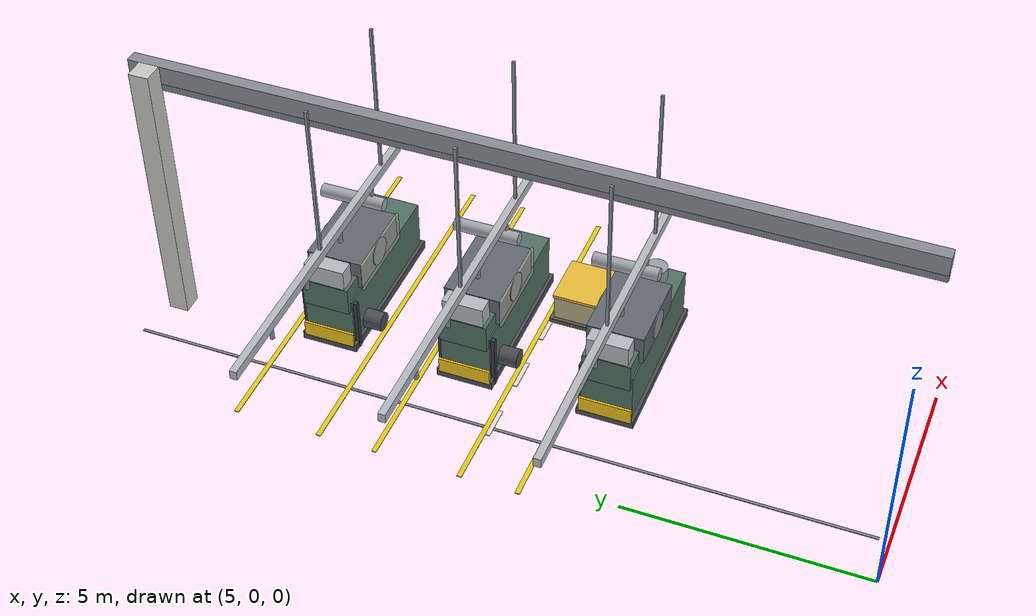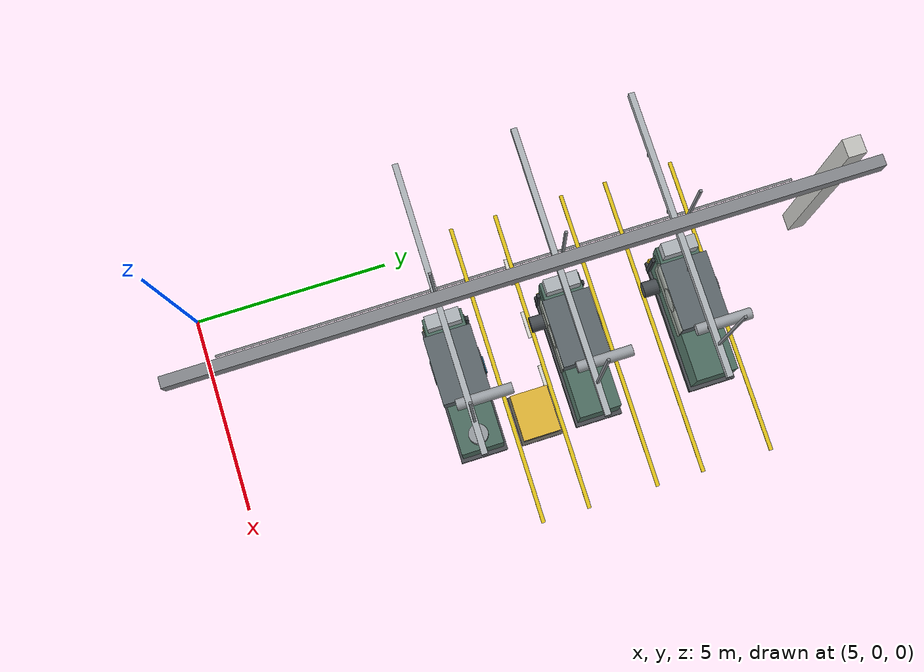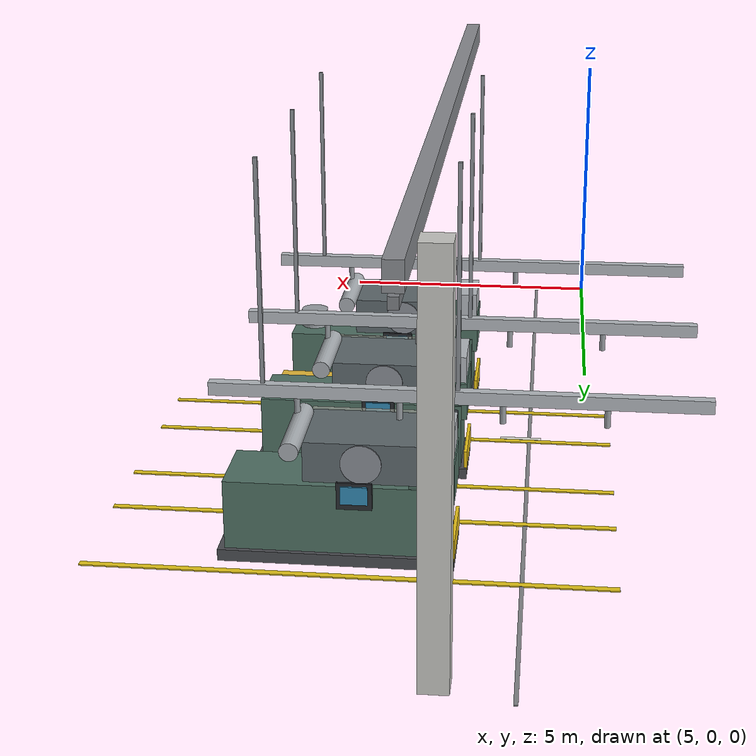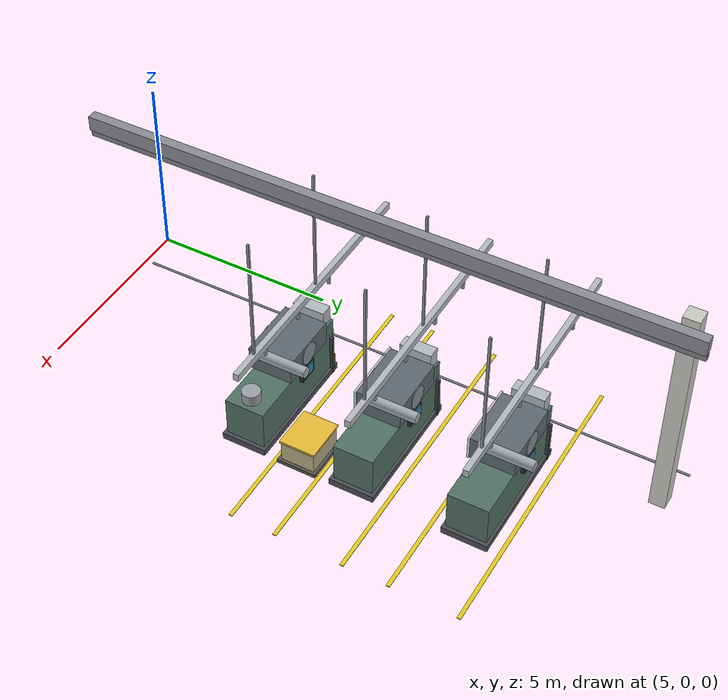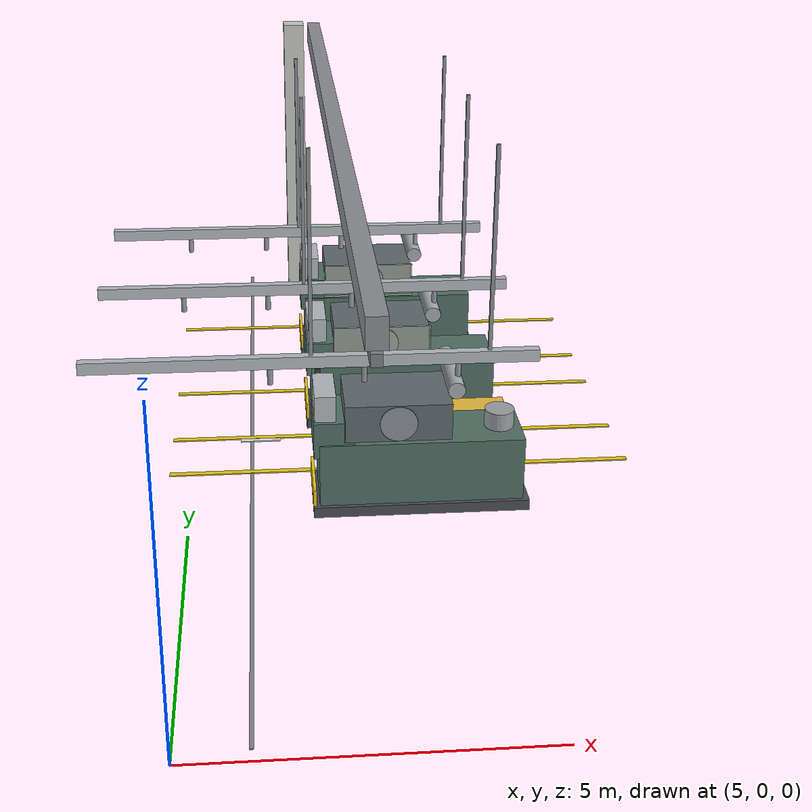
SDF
<sdf version="1.10">
 <world name="textile_mill">
  <model name="col_3">
   <static>true</static>
   <pose>7.050 15.450 3.000 0 0 0</pose>
   <link name="l">
    <collision name="c"><geometry><box><size>0.420 0.420 6.000</size></box></geometry></collision>
    <visual name="v">
     <geometry><box><size>0.420 0.420 6.000</size></box></geometry>
     <material>
      <ambient>0.800 0.800 0.780 1.0</ambient>
      <diffuse>0.800 0.800 0.780 1.0</diffuse>
      <specular>0.18 0.18 0.18 1</specular>
      <pbr><metal><roughness>0.85</roughness><metalness>0.0</metalness></metal></pbr>
     </material>
    </visual>
   </link>
  </model>
  <model name="truss_1">
   <static>true</static>
   <pose>7.500 8.000 5.700 0 0 0</pose>
   <link name="l">
    <collision name="c"><geometry><box><size>0.260 16.000 0.400</size></box></geometry></collision>
    <visual name="v">
     <geometry><box><size>0.260 16.000 0.400</size></box></geometry>
     <material>
      <ambient>0.550 0.560 0.580 1.0</ambient>
      <diffuse>0.550 0.560 0.580 1.0</diffuse>
      <specular>0.18 0.18 0.18 1</specular>
      <pbr><metal><roughness>0.4</roughness><metalness>0.6</metalness></metal></pbr>
     </material>
    </visual>
   </link>
  </model>
  <model name="truss_lo_1">
   <static>true</static>
   <pose>7.500 8.000 5.380 0 0 0</pose>
   <link name="l">
    <collision name="c"><geometry><box><size>0.140 16.000 0.160</size></box></geometry></collision>
    <visual name="v">
     <geometry><box><size>0.140 16.000 0.160</size></box></geometry>
     <material>
      <ambient>0.500 0.510 0.530 1.0</ambient>
      <diffuse>0.500 0.510 0.530 1.0</diffuse>
      <specular>0.18 0.18 0.18 1</specular>
      <pbr><metal><roughness>0.65</roughness><metalness>0.6</metalness></metal></pbr>
     </material>
    </visual>
   </link>
  </model>
  <model name="obs_pallet_a">
   <static>true</static>
   <pose>9.900 7.500 0.340 0 0 0</pose>
   <link name="l">
    <collision name="c"><geometry><box><size>1.100 0.900 0.680</size></box></geometry></collision>
    <visual name="v">
     <geometry><box><size>1.100 0.900 0.680</size></box></geometry>
     <material>
      <ambient>0.720 0.680 0.520 1.0</ambient>
      <diffuse>0.720 0.680 0.520 1.0</diffuse>
      <specular>0.18 0.18 0.18 1</specular>
      <pbr><metal><roughness>0.85</roughness><metalness>0.0</metalness></metal></pbr>
     </material>
    </visual>
   </link>
  </model>
  <model name="obsband_pallet_a">
   <static>true</static>
   <pose>9.900 7.500 0.700 0 0 0</pose>
   <link name="l">
    <collision name="c"><geometry><box><size>1.160 0.960 0.060</size></box></geometry></collision>
    <visual name="v">
     <geometry><box><size>1.160 0.960 0.060</size></box></geometry>
     <material>
      <ambient>0.920 0.740 0.220 1.0</ambient>
      <diffuse>0.920 0.740 0.220 1.0</diffuse>
      <specular>0.18 0.18 0.18 1</specular>
      <pbr><metal><roughness>0.65</roughness><metalness>0.0</metalness></metal></pbr>
     </material>
    </visual>
   </link>
  </model>
  <model name="obsfoot_pallet_a">
   <static>true</static>
   <pose>9.900 7.500 0.060 0 0 0</pose>
   <link name="l">
    <collision name="c"><geometry><box><size>1.260 1.060 0.100</size></box></geometry></collision>
    <visual name="v">
     <geometry><box><size>1.260 1.060 0.100</size></box></geometry>
     <material>
      <ambient>0.340 0.330 0.300 1.0</ambient>
      <diffuse>0.340 0.330 0.300 1.0</diffuse>
      <specular>0.18 0.18 0.18 1</specular>
      <pbr><metal><roughness>0.65</roughness><metalness>0.0</metalness></metal></pbr>
     </material>
    </visual>
   </link>
  </model>
  <model name="cln_carding_1">
   <static>true</static>
   <pose>7.000 6.000 2.520 0 0 0</pose>
   <link name="l">
    <collision name="c"><geometry><box><size>7.300 0.150 0.200</size></box></geometry></collision>
    <visual name="v">
     <geometry><box><size>7.300 0.150 0.200</size></box></geometry>
     <material>
      <ambient>0.720 0.740 0.760 1.0</ambient>
      <diffuse>0.720 0.740 0.760 1.0</diffuse>
      <specular>0.18 0.18 0.18 1</specular>
      <pbr><metal><roughness>0.35</roughness><metalness>0.5</metalness></metal></pbr>
     </material>
    </visual>
   </link>
  </model>
  <model name="clnz_carding_1_2">
   <static>true</static>
   <pose>6.350 6.000 2.280 0.0000 0.0000 0.0000</pose>
   <link name="l">
    <collision name="c">
     <geometry><cylinder><radius>0.045</radius><length>0.300</length></cylinder></geometry>
    </collision>
    <visual name="v">
     <geometry><cylinder><radius>0.045</radius><length>0.300</length></cylinder></geometry>
     <material>
      <ambient>0.580 0.600 0.620 1.0</ambient>
      <diffuse>0.580 0.600 0.620 1.0</diffuse>
      <specular>0.18 0.18 0.18 1</specular>
      <pbr><metal><roughness>0.35</roughness><metalness>0.5</metalness></metal></pbr>
     </material>
    </visual>
   </link>
  </model>
  <model name="clnz_carding_1_3">
   <static>true</static>
   <pose>7.850 6.000 2.280 0.0000 0.0000 0.0000</pose>
   <link name="l">
    <collision name="c">
     <geometry><cylinder><radius>0.045</radius><length>0.300</length></cylinder></geometry>
    </collision>
    <visual name="v">
     <geometry><cylinder><radius>0.045</radius><length>0.300</length></cylinder></geometry>
     <material>
      <ambient>0.580 0.600 0.620 1.0</ambient>
      <diffuse>0.580 0.600 0.620 1.0</diffuse>
      <specular>0.18 0.18 0.18 1</specular>
      <pbr><metal><roughness>0.35</roughness><metalness>0.5</metalness></metal></pbr>
     </material>
    </visual>
   </link>
  </model>
  <model name="clnz_carding_1_4">
   <static>true</static>
   <pose>9.350 6.000 2.280 0.0000 0.0000 0.0000</pose>
   <link name="l">
    <collision name="c">
     <geometry><cylinder><radius>0.045</radius><length>0.300</length></cylinder></geometry>
    </collision>
    <visual name="v">
     <geometry><cylinder><radius>0.045</radius><length>0.300</length></cylinder></geometry>
     <material>
      <ambient>0.580 0.600 0.620 1.0</ambient>
      <diffuse>0.580 0.600 0.620 1.0</diffuse>
      <specular>0.18 0.18 0.18 1</specular>
      <pbr><metal><roughness>0.35</roughness><metalness>0.5</metalness></metal></pbr>
     </material>
    </visual>
   </link>
  </model>
  <model name="clnh_carding_1_1">
   <static>true</static>
   <pose>7.000 6.000 4.260 0 0 0</pose>
   <link name="l">
    <collision name="c"><geometry><box><size>0.060 0.060 3.480</size></box></geometry></collision>
    <visual name="v">
     <geometry><box><size>0.060 0.060 3.480</size></box></geometry>
     <material>
      <ambient>0.550 0.570 0.590 1.0</ambient>
      <diffuse>0.550 0.570 0.590 1.0</diffuse>
      <specular>0.18 0.18 0.18 1</specular>
      <pbr><metal><roughness>0.65</roughness><metalness>0.6</metalness></metal></pbr>
     </material>
    </visual>
   </link>
  </model>
  <model name="clnh_carding_1_2">
   <static>true</static>
   <pose>9.850 6.000 4.260 0 0 0</pose>
   <link name="l">
    <collision name="c"><geometry><box><size>0.060 0.060 3.480</size></box></geometry></collision>
    <visual name="v">
     <geometry><box><size>0.060 0.060 3.480</size></box></geometry>
     <material>
      <ambient>0.550 0.570 0.590 1.0</ambient>
      <diffuse>0.550 0.570 0.590 1.0</diffuse>
      <specular>0.18 0.18 0.18 1</specular>
      <pbr><metal><roughness>0.65</roughness><metalness>0.6</metalness></metal></pbr>
     </material>
    </visual>
   </link>
  </model>
  <model name="cln_carding_2">
   <static>true</static>
   <pose>7.000 9.000 2.520 0 0 0</pose>
   <link name="l">
    <collision name="c"><geometry><box><size>7.300 0.150 0.200</size></box></geometry></collision>
    <visual name="v">
     <geometry><box><size>7.300 0.150 0.200</size></box></geometry>
     <material>
      <ambient>0.720 0.740 0.760 1.0</ambient>
      <diffuse>0.720 0.740 0.760 1.0</diffuse>
      <specular>0.18 0.18 0.18 1</specular>
      <pbr><metal><roughness>0.35</roughness><metalness>0.5</metalness></metal></pbr>
     </material>
    </visual>
   </link>
  </model>
  <model name="clnz_carding_2_1">
   <static>true</static>
   <pose>4.850 9.000 2.280 0.0000 0.0000 0.0000</pose>
   <link name="l">
    <collision name="c">
     <geometry><cylinder><radius>0.045</radius><length>0.300</length></cylinder></geometry>
    </collision>
    <visual name="v">
     <geometry><cylinder><radius>0.045</radius><length>0.300</length></cylinder></geometry>
     <material>
      <ambient>0.580 0.600 0.620 1.0</ambient>
      <diffuse>0.580 0.600 0.620 1.0</diffuse>
      <specular>0.18 0.18 0.18 1</specular>
      <pbr><metal><roughness>0.35</roughness><metalness>0.5</metalness></metal></pbr>
     </material>
    </visual>
   </link>
  </model>
  <model name="clnz_carding_2_2">
   <static>true</static>
   <pose>6.350 9.000 2.280 0.0000 0.0000 0.0000</pose>
   <link name="l">
    <collision name="c">
     <geometry><cylinder><radius>0.045</radius><length>0.300</length></cylinder></geometry>
    </collision>
    <visual name="v">
     <geometry><cylinder><radius>0.045</radius><length>0.300</length></cylinder></geometry>
     <material>
      <ambient>0.580 0.600 0.620 1.0</ambient>
      <diffuse>0.580 0.600 0.620 1.0</diffuse>
      <specular>0.18 0.18 0.18 1</specular>
      <pbr><metal><roughness>0.35</roughness><metalness>0.5</metalness></metal></pbr>
     </material>
    </visual>
   </link>
  </model>
  <model name="clnz_carding_2_3">
   <static>true</static>
   <pose>7.850 9.000 2.280 0.0000 0.0000 0.0000</pose>
   <link name="l">
    <collision name="c">
     <geometry><cylinder><radius>0.045</radius><length>0.300</length></cylinder></geometry>
    </collision>
    <visual name="v">
     <geometry><cylinder><radius>0.045</radius><length>0.300</length></cylinder></geometry>
     <material>
      <ambient>0.580 0.600 0.620 1.0</ambient>
      <diffuse>0.580 0.600 0.620 1.0</diffuse>
      <specular>0.18 0.18 0.18 1</specular>
      <pbr><metal><roughness>0.35</roughness><metalness>0.5</metalness></metal></pbr>
     </material>
    </visual>
   </link>
  </model>
  <model name="clnz_carding_2_4">
   <static>true</static>
   <pose>9.350 9.000 2.280 0.0000 0.0000 0.0000</pose>
   <link name="l">
    <collision name="c">
     <geometry><cylinder><radius>0.045</radius><length>0.300</length></cylinder></geometry>
    </collision>
    <visual name="v">
     <geometry><cylinder><radius>0.045</radius><length>0.300</length></cylinder></geometry>
     <material>
      <ambient>0.580 0.600 0.620 1.0</ambient>
      <diffuse>0.580 0.600 0.620 1.0</diffuse>
      <specular>0.18 0.18 0.18 1</specular>
      <pbr><metal><roughness>0.35</roughness><metalness>0.5</metalness></metal></pbr>
     </material>
    </visual>
   </link>
  </model>
  <model name="clnh_carding_2_1">
   <static>true</static>
   <pose>7.000 9.000 4.260 0 0 0</pose>
   <link name="l">
    <collision name="c"><geometry><box><size>0.060 0.060 3.480</size></box></geometry></collision>
    <visual name="v">
     <geometry><box><size>0.060 0.060 3.480</size></box></geometry>
     <material>
      <ambient>0.550 0.570 0.590 1.0</ambient>
      <diffuse>0.550 0.570 0.590 1.0</diffuse>
      <specular>0.18 0.18 0.18 1</specular>
      <pbr><metal><roughness>0.65</roughness><metalness>0.6</metalness></metal></pbr>
     </material>
    </visual>
   </link>
  </model>
  <model name="clnh_carding_2_2">
   <static>true</static>
   <pose>9.850 9.000 4.260 0 0 0</pose>
   <link name="l">
    <collision name="c"><geometry><box><size>0.060 0.060 3.480</size></box></geometry></collision>
    <visual name="v">
     <geometry><box><size>0.060 0.060 3.480</size></box></geometry>
     <material>
      <ambient>0.550 0.570 0.590 1.0</ambient>
      <diffuse>0.550 0.570 0.590 1.0</diffuse>
      <specular>0.18 0.18 0.18 1</specular>
      <pbr><metal><roughness>0.65</roughness><metalness>0.6</metalness></metal></pbr>
     </material>
    </visual>
   </link>
  </model>
  <model name="cln_carding_3">
   <static>true</static>
   <pose>7.000 12.000 2.520 0 0 0</pose>
   <link name="l">
    <collision name="c"><geometry><box><size>7.300 0.150 0.200</size></box></geometry></collision>
    <visual name="v">
     <geometry><box><size>7.300 0.150 0.200</size></box></geometry>
     <material>
      <ambient>0.720 0.740 0.760 1.0</ambient>
      <diffuse>0.720 0.740 0.760 1.0</diffuse>
      <specular>0.18 0.18 0.18 1</specular>
      <pbr><metal><roughness>0.35</roughness><metalness>0.5</metalness></metal></pbr>
     </material>
    </visual>
   </link>
  </model>
  <model name="clnz_carding_3_1">
   <static>true</static>
   <pose>4.850 12.000 2.280 0.0000 0.0000 0.0000</pose>
   <link name="l">
    <collision name="c">
     <geometry><cylinder><radius>0.045</radius><length>0.300</length></cylinder></geometry>
    </collision>
    <visual name="v">
     <geometry><cylinder><radius>0.045</radius><length>0.300</length></cylinder></geometry>
     <material>
      <ambient>0.580 0.600 0.620 1.0</ambient>
      <diffuse>0.580 0.600 0.620 1.0</diffuse>
      <specular>0.18 0.18 0.18 1</specular>
      <pbr><metal><roughness>0.35</roughness><metalness>0.5</metalness></metal></pbr>
     </material>
    </visual>
   </link>
  </model>
  <model name="clnz_carding_3_2">
   <static>true</static>
   <pose>6.350 12.000 2.280 0.0000 0.0000 0.0000</pose>
   <link name="l">
    <collision name="c">
     <geometry><cylinder><radius>0.045</radius><length>0.300</length></cylinder></geometry>
    </collision>
    <visual name="v">
     <geometry><cylinder><radius>0.045</radius><length>0.300</length></cylinder></geometry>
     <material>
      <ambient>0.580 0.600 0.620 1.0</ambient>
      <diffuse>0.580 0.600 0.620 1.0</diffuse>
      <specular>0.18 0.18 0.18 1</specular>
      <pbr><metal><roughness>0.35</roughness><metalness>0.5</metalness></metal></pbr>
     </material>
    </visual>
   </link>
  </model>
  <model name="clnz_carding_3_3">
   <static>true</static>
   <pose>7.850 12.000 2.280 0.0000 0.0000 0.0000</pose>
   <link name="l">
    <collision name="c">
     <geometry><cylinder><radius>0.045</radius><length>0.300</length></cylinder></geometry>
    </collision>
    <visual name="v">
     <geometry><cylinder><radius>0.045</radius><length>0.300</length></cylinder></geometry>
     <material>
      <ambient>0.580 0.600 0.620 1.0</ambient>
      <diffuse>0.580 0.600 0.620 1.0</diffuse>
      <specular>0.18 0.18 0.18 1</specular>
      <pbr><metal><roughness>0.35</roughness><metalness>0.5</metalness></metal></pbr>
     </material>
    </visual>
   </link>
  </model>
  <model name="clnz_carding_3_4">
   <static>true</static>
   <pose>9.350 12.000 2.280 0.0000 0.0000 0.0000</pose>
   <link name="l">
    <collision name="c">
     <geometry><cylinder><radius>0.045</radius><length>0.300</length></cylinder></geometry>
    </collision>
    <visual name="v">
     <geometry><cylinder><radius>0.045</radius><length>0.300</length></cylinder></geometry>
     <material>
      <ambient>0.580 0.600 0.620 1.0</ambient>
      <diffuse>0.580 0.600 0.620 1.0</diffuse>
      <specular>0.18 0.18 0.18 1</specular>
      <pbr><metal><roughness>0.35</roughness><metalness>0.5</metalness></metal></pbr>
     </material>
    </visual>
   </link>
  </model>
  <model name="clnh_carding_3_1">
   <static>true</static>
   <pose>7.000 12.000 4.260 0 0 0</pose>
   <link name="l">
    <collision name="c"><geometry><box><size>0.060 0.060 3.480</size></box></geometry></collision>
    <visual name="v">
     <geometry><box><size>0.060 0.060 3.480</size></box></geometry>
     <material>
      <ambient>0.550 0.570 0.590 1.0</ambient>
      <diffuse>0.550 0.570 0.590 1.0</diffuse>
      <specular>0.18 0.18 0.18 1</specular>
      <pbr><metal><roughness>0.65</roughness><metalness>0.6</metalness></metal></pbr>
     </material>
    </visual>
   </link>
  </model>
  <model name="clnh_carding_3_2">
   <static>true</static>
   <pose>9.850 12.000 4.260 0 0 0</pose>
   <link name="l">
    <collision name="c"><geometry><box><size>0.060 0.060 3.480</size></box></geometry></collision>
    <visual name="v">
     <geometry><box><size>0.060 0.060 3.480</size></box></geometry>
     <material>
      <ambient>0.550 0.570 0.590 1.0</ambient>
      <diffuse>0.550 0.570 0.590 1.0</diffuse>
      <specular>0.18 0.18 0.18 1</specular>
      <pbr><metal><roughness>0.65</roughness><metalness>0.6</metalness></metal></pbr>
     </material>
    </visual>
   </link>
  </model>
  <model name="line_carding_6.0_b">
   <static>true</static>
   <pose>8.550 6.900 0.012 0 0 0</pose>
   <link name="l">
    <visual name="v">
     <geometry><box><size>7.900 0.100 0.020</size></box></geometry>
     <material>
      <ambient>0.920 0.800 0.100 1.0</ambient>
      <diffuse>0.920 0.800 0.100 1.0</diffuse>
      <specular>0.18 0.18 0.18 1</specular>
      <pbr><metal><roughness>0.65</roughness><metalness>0.0</metalness></metal></pbr>
     </material>
    </visual>
   </link>
  </model>
  <model name="line_carding_9.0_a">
   <static>true</static>
   <pose>8.550 8.100 0.012 0 0 0</pose>
   <link name="l">
    <visual name="v">
     <geometry><box><size>7.900 0.100 0.020</size></box></geometry>
     <material>
      <ambient>0.920 0.800 0.100 1.0</ambient>
      <diffuse>0.920 0.800 0.100 1.0</diffuse>
      <specular>0.18 0.18 0.18 1</specular>
      <pbr><metal><roughness>0.65</roughness><metalness>0.0</metalness></metal></pbr>
     </material>
    </visual>
   </link>
  </model>
  <model name="line_carding_9.0_b">
   <static>true</static>
   <pose>8.550 9.900 0.012 0 0 0</pose>
   <link name="l">
    <visual name="v">
     <geometry><box><size>7.900 0.100 0.020</size></box></geometry>
     <material>
      <ambient>0.920 0.800 0.100 1.0</ambient>
      <diffuse>0.920 0.800 0.100 1.0</diffuse>
      <specular>0.18 0.18 0.18 1</specular>
      <pbr><metal><roughness>0.65</roughness><metalness>0.0</metalness></metal></pbr>
     </material>
    </visual>
   </link>
  </model>
  <model name="line_carding_12.0_a">
   <static>true</static>
   <pose>8.550 11.100 0.012 0 0 0</pose>
   <link name="l">
    <visual name="v">
     <geometry><box><size>7.900 0.100 0.020</size></box></geometry>
     <material>
      <ambient>0.920 0.800 0.100 1.0</ambient>
      <diffuse>0.920 0.800 0.100 1.0</diffuse>
      <specular>0.18 0.18 0.18 1</specular>
      <pbr><metal><roughness>0.65</roughness><metalness>0.0</metalness></metal></pbr>
     </material>
    </visual>
   </link>
  </model>
  <model name="line_carding_12.0_b">
   <static>true</static>
   <pose>8.550 12.900 0.012 0 0 0</pose>
   <link name="l">
    <visual name="v">
     <geometry><box><size>7.900 0.100 0.020</size></box></geometry>
     <material>
      <ambient>0.920 0.800 0.100 1.0</ambient>
      <diffuse>0.920 0.800 0.100 1.0</diffuse>
      <specular>0.18 0.18 0.18 1</specular>
      <pbr><metal><roughness>0.65</roughness><metalness>0.0</metalness></metal></pbr>
     </material>
    </visual>
   </link>
  </model>
  <model name="joint_x_1">
   <static>true</static>
   <pose>6.000 8.000 0.010 0 0 0</pose>
   <link name="l">
    <visual name="v">
     <geometry><box><size>0.060 15.600 0.016</size></box></geometry>
     <material>
      <ambient>0.520 0.530 0.540 1.0</ambient>
      <diffuse>0.520 0.530 0.540 1.0</diffuse>
      <specular>0.18 0.18 0.18 1</specular>
      <pbr><metal><roughness>0.65</roughness><metalness>0.0</metalness></metal></pbr>
     </material>
    </visual>
   </link>
  </model>
  <model name="dash_3">
   <static>true</static>
   <pose>6.150 8.000 0.012 0 0 0</pose>
   <link name="l">
    <visual name="v">
     <geometry><box><size>0.700 0.090 0.020</size></box></geometry>
     <material>
      <ambient>0.900 0.900 0.860 1.0</ambient>
      <diffuse>0.900 0.900 0.860 1.0</diffuse>
      <specular>0.18 0.18 0.18 1</specular>
      <pbr><metal><roughness>0.65</roughness><metalness>0.0</metalness></metal></pbr>
     </material>
    </visual>
   </link>
  </model>
  <model name="dash_4">
   <static>true</static>
   <pose>7.600 8.000 0.012 0 0 0</pose>
   <link name="l">
    <visual name="v">
     <geometry><box><size>0.700 0.090 0.020</size></box></geometry>
     <material>
      <ambient>0.900 0.900 0.860 1.0</ambient>
      <diffuse>0.900 0.900 0.860 1.0</diffuse>
      <specular>0.18 0.18 0.18 1</specular>
      <pbr><metal><roughness>0.65</roughness><metalness>0.0</metalness></metal></pbr>
     </material>
    </visual>
   </link>
  </model>
  <model name="dash_5">
   <static>true</static>
   <pose>9.050 8.000 0.012 0 0 0</pose>
   <link name="l">
    <visual name="v">
     <geometry><box><size>0.700 0.090 0.020</size></box></geometry>
     <material>
      <ambient>0.900 0.900 0.860 1.0</ambient>
      <diffuse>0.900 0.900 0.860 1.0</diffuse>
      <specular>0.18 0.18 0.18 1</specular>
      <pbr><metal><roughness>0.65</roughness><metalness>0.0</metalness></metal></pbr>
     </material>
    </visual>
   </link>
  </model>
  <model name="carding_machine_1_plinth">
   <static>true</static>
   <pose>8.750 6.000 0.090 0 0 0</pose>
   <link name="l">
    <collision name="c"><geometry><box><size>3.500 1.200 0.180</size></box></geometry></collision>
    <visual name="v">
     <geometry><box><size>3.500 1.200 0.180</size></box></geometry>
     <material>
      <ambient>0.300 0.310 0.330 1.0</ambient>
      <diffuse>0.300 0.310 0.330 1.0</diffuse>
      <specular>0.18 0.18 0.18 1</specular>
      <pbr><metal><roughness>0.6</roughness><metalness>0.4</metalness></metal></pbr>
     </material>
    </visual>
   </link>
  </model>
  <model name="carding_machine_1_body">
   <static>true</static>
   <pose>8.750 6.000 0.720 0 0 0</pose>
   <link name="l">
    <collision name="c"><geometry><box><size>3.300 1.060 1.080</size></box></geometry></collision>
    <visual name="v">
     <geometry><box><size>3.300 1.060 1.080</size></box></geometry>
     <material>
      <ambient>0.320 0.450 0.400 1.0</ambient>
      <diffuse>0.320 0.450 0.400 1.0</diffuse>
      <specular>0.18 0.18 0.18 1</specular>
      <pbr><metal><roughness>0.45</roughness><metalness>0.25</metalness></metal></pbr>
     </material>
    </visual>
   </link>
  </model>
  <model name="carding_machine_1_housing">
   <static>true</static>
   <pose>8.350 6.000 1.660 0 0 0</pose>
   <link name="l">
    <collision name="c"><geometry><box><size>1.700 1.180 0.620</size></box></geometry></collision>
    <visual name="v">
     <geometry><box><size>1.700 1.180 0.620</size></box></geometry>
     <material>
      <ambient>0.380 0.420 0.440 1.0</ambient>
      <diffuse>0.380 0.420 0.440 1.0</diffuse>
      <specular>0.18 0.18 0.18 1</specular>
      <pbr><metal><roughness>0.4</roughness><metalness>0.45</metalness></metal></pbr>
     </material>
    </visual>
   </link>
  </model>
  <model name="carding_machine_1_cylinder">
   <static>true</static>
   <pose>8.350 6.000 1.660 1.5708 0.0000 0.0000</pose>
   <link name="l">
    <collision name="c">
     <geometry><cylinder><radius>0.300</radius><length>1.220</length></cylinder></geometry>
    </collision>
    <visual name="v">
     <geometry><cylinder><radius>0.300</radius><length>1.220</length></cylinder></geometry>
     <material>
      <ambient>0.550 0.570 0.600 1.0</ambient>
      <diffuse>0.550 0.570 0.600 1.0</diffuse>
      <specular>0.18 0.18 0.18 1</specular>
      <pbr><metal><roughness>0.25</roughness><metalness>0.7</metalness></metal></pbr>
     </material>
    </visual>
   </link>
  </model>
  <model name="carding_machine_1_feed">
   <static>true</static>
   <pose>7.340 6.000 1.330 0 0 0</pose>
   <link name="l">
    <collision name="c"><geometry><box><size>0.660 1.000 0.620</size></box></geometry></collision>
    <visual name="v">
     <geometry><box><size>0.660 1.000 0.620</size></box></geometry>
     <material>
      <ambient>0.320 0.450 0.400 1.0</ambient>
      <diffuse>0.320 0.450 0.400 1.0</diffuse>
      <specular>0.18 0.18 0.18 1</specular>
      <pbr><metal><roughness>0.5</roughness><metalness>0.0</metalness></metal></pbr>
     </material>
    </visual>
   </link>
  </model>
  <model name="carding_machine_1_feed_hopper">
   <static>true</static>
   <pose>7.200 6.000 1.860 0 0 0</pose>
   <link name="l">
    <collision name="c"><geometry><box><size>0.340 0.860 0.440</size></box></geometry></collision>
    <visual name="v">
     <geometry><box><size>0.340 0.860 0.440</size></box></geometry>
     <material>
      <ambient>0.720 0.740 0.760 1.0</ambient>
      <diffuse>0.720 0.740 0.760 1.0</diffuse>
      <specular>0.18 0.18 0.18 1</specular>
      <pbr><metal><roughness>0.65</roughness><metalness>0.0</metalness></metal></pbr>
     </material>
    </visual>
   </link>
  </model>
  <model name="carding_machine_1_coiler">
   <static>true</static>
   <pose>10.050 6.000 1.300 0.0000 0.0000 0.0000</pose>
   <link name="l">
    <collision name="c">
     <geometry><cylinder><radius>0.240</radius><length>0.520</length></cylinder></geometry>
    </collision>
    <visual name="v">
     <geometry><cylinder><radius>0.240</radius><length>0.520</length></cylinder></geometry>
     <material>
      <ambient>0.620 0.640 0.660 1.0</ambient>
      <diffuse>0.620 0.640 0.660 1.0</diffuse>
      <specular>0.18 0.18 0.18 1</specular>
      <pbr><metal><roughness>0.3</roughness><metalness>0.6</metalness></metal></pbr>
     </material>
    </visual>
   </link>
  </model>
  <model name="carding_machine_1_panel">
   <static>true</static>
   <pose>8.450 6.580 1.160 0 0 0</pose>
   <link name="l">
    <collision name="c"><geometry><box><size>0.520 0.100 0.420</size></box></geometry></collision>
    <visual name="v">
     <geometry><box><size>0.520 0.100 0.420</size></box></geometry>
     <material>
      <ambient>0.160 0.170 0.190 1.0</ambient>
      <diffuse>0.160 0.170 0.190 1.0</diffuse>
      <specular>0.18 0.18 0.18 1</specular>
      <pbr><metal><roughness>0.65</roughness><metalness>0.0</metalness></metal></pbr>
     </material>
    </visual>
   </link>
  </model>
  <model name="carding_machine_1_screen">
   <static>true</static>
   <pose>8.450 6.640 1.180 0 0 0</pose>
   <link name="l">
    <collision name="c"><geometry><box><size>0.400 0.030 0.280</size></box></geometry></collision>
    <visual name="v">
     <geometry><box><size>0.400 0.030 0.280</size></box></geometry>
     <material>
      <ambient>0.200 0.550 0.720 1.0</ambient>
      <diffuse>0.200 0.550 0.720 1.0</diffuse>
      <specular>0.18 0.18 0.18 1</specular>
      <pbr><metal><roughness>0.2</roughness><metalness>0.0</metalness></metal></pbr>
     </material>
    </visual>
   </link>
  </model>
  <model name="carding_machine_1_post_b_l">
   <static>true</static>
   <pose>7.200 6.560 0.600 0 0 0</pose>
   <link name="l">
    <collision name="c"><geometry><box><size>0.100 0.100 1.200</size></box></geometry></collision>
    <visual name="v">
     <geometry><box><size>0.100 0.100 1.200</size></box></geometry>
     <material>
      <ambient>0.220 0.240 0.260 1.0</ambient>
      <diffuse>0.220 0.240 0.260 1.0</diffuse>
      <specular>0.18 0.18 0.18 1</specular>
      <pbr><metal><roughness>0.65</roughness><metalness>0.5</metalness></metal></pbr>
     </material>
    </visual>
   </link>
  </model>
  <model name="carding_machine_1_duct">
   <static>true</static>
   <pose>9.300 6.400 2.050 1.5708 0.0000 0.0000</pose>
   <link name="l">
    <collision name="c">
     <geometry><cylinder><radius>0.140</radius><length>1.400</length></cylinder></geometry>
    </collision>
    <visual name="v">
     <geometry><cylinder><radius>0.140</radius><length>1.400</length></cylinder></geometry>
     <material>
      <ambient>0.660 0.680 0.700 1.0</ambient>
      <diffuse>0.660 0.680 0.700 1.0</diffuse>
      <specular>0.18 0.18 0.18 1</specular>
      <pbr><metal><roughness>0.35</roughness><metalness>0.55</metalness></metal></pbr>
     </material>
    </visual>
   </link>
  </model>
  <model name="carding_machine_1_hazard">
   <static>true</static>
   <pose>7.020 6.000 0.300 0 0 0</pose>
   <link name="l">
    <collision name="c"><geometry><box><size>0.050 1.100 0.340</size></box></geometry></collision>
    <visual name="v">
     <geometry><box><size>0.050 1.100 0.340</size></box></geometry>
     <material>
      <ambient>0.940 0.780 0.100 1.0</ambient>
      <diffuse>0.940 0.780 0.100 1.0</diffuse>
      <specular>0.18 0.18 0.18 1</specular>
      <pbr><metal><roughness>0.65</roughness><metalness>0.0</metalness></metal></pbr>
     </material>
    </visual>
   </link>
  </model>
  <model name="carding_machine_2_plinth">
   <static>true</static>
   <pose>8.750 9.000 0.090 0 0 0</pose>
   <link name="l">
    <collision name="c"><geometry><box><size>3.500 1.200 0.180</size></box></geometry></collision>
    <visual name="v">
     <geometry><box><size>3.500 1.200 0.180</size></box></geometry>
     <material>
      <ambient>0.300 0.310 0.330 1.0</ambient>
      <diffuse>0.300 0.310 0.330 1.0</diffuse>
      <specular>0.18 0.18 0.18 1</specular>
      <pbr><metal><roughness>0.6</roughness><metalness>0.4</metalness></metal></pbr>
     </material>
    </visual>
   </link>
  </model>
  <model name="carding_machine_2_body">
   <static>true</static>
   <pose>8.750 9.000 0.720 0 0 0</pose>
   <link name="l">
    <collision name="c"><geometry><box><size>3.300 1.060 1.080</size></box></geometry></collision>
    <visual name="v">
     <geometry><box><size>3.300 1.060 1.080</size></box></geometry>
     <material>
      <ambient>0.320 0.450 0.400 1.0</ambient>
      <diffuse>0.320 0.450 0.400 1.0</diffuse>
      <specular>0.18 0.18 0.18 1</specular>
      <pbr><metal><roughness>0.45</roughness><metalness>0.25</metalness></metal></pbr>
     </material>
    </visual>
   </link>
  </model>
  <model name="carding_machine_2_housing">
   <static>true</static>
   <pose>8.350 9.000 1.660 0 0 0</pose>
   <link name="l">
    <collision name="c"><geometry><box><size>1.700 1.180 0.620</size></box></geometry></collision>
    <visual name="v">
     <geometry><box><size>1.700 1.180 0.620</size></box></geometry>
     <material>
      <ambient>0.380 0.420 0.440 1.0</ambient>
      <diffuse>0.380 0.420 0.440 1.0</diffuse>
      <specular>0.18 0.18 0.18 1</specular>
      <pbr><metal><roughness>0.4</roughness><metalness>0.45</metalness></metal></pbr>
     </material>
    </visual>
   </link>
  </model>
  <model name="carding_machine_2_cylinder">
   <static>true</static>
   <pose>8.350 9.000 1.660 1.5708 0.0000 0.0000</pose>
   <link name="l">
    <collision name="c">
     <geometry><cylinder><radius>0.300</radius><length>1.220</length></cylinder></geometry>
    </collision>
    <visual name="v">
     <geometry><cylinder><radius>0.300</radius><length>1.220</length></cylinder></geometry>
     <material>
      <ambient>0.550 0.570 0.600 1.0</ambient>
      <diffuse>0.550 0.570 0.600 1.0</diffuse>
      <specular>0.18 0.18 0.18 1</specular>
      <pbr><metal><roughness>0.25</roughness><metalness>0.7</metalness></metal></pbr>
     </material>
    </visual>
   </link>
  </model>
  <model name="carding_machine_2_feed">
   <static>true</static>
   <pose>7.340 9.000 1.330 0 0 0</pose>
   <link name="l">
    <collision name="c"><geometry><box><size>0.660 1.000 0.620</size></box></geometry></collision>
    <visual name="v">
     <geometry><box><size>0.660 1.000 0.620</size></box></geometry>
     <material>
      <ambient>0.320 0.450 0.400 1.0</ambient>
      <diffuse>0.320 0.450 0.400 1.0</diffuse>
      <specular>0.18 0.18 0.18 1</specular>
      <pbr><metal><roughness>0.5</roughness><metalness>0.0</metalness></metal></pbr>
     </material>
    </visual>
   </link>
  </model>
  <model name="carding_machine_2_feed_hopper">
   <static>true</static>
   <pose>7.200 9.000 1.860 0 0 0</pose>
   <link name="l">
    <collision name="c"><geometry><box><size>0.340 0.860 0.440</size></box></geometry></collision>
    <visual name="v">
     <geometry><box><size>0.340 0.860 0.440</size></box></geometry>
     <material>
      <ambient>0.720 0.740 0.760 1.0</ambient>
      <diffuse>0.720 0.740 0.760 1.0</diffuse>
      <specular>0.18 0.18 0.18 1</specular>
      <pbr><metal><roughness>0.65</roughness><metalness>0.0</metalness></metal></pbr>
     </material>
    </visual>
   </link>
  </model>
  <model name="carding_machine_2_panel">
   <static>true</static>
   <pose>8.450 9.580 1.160 0 0 0</pose>
   <link name="l">
    <collision name="c"><geometry><box><size>0.520 0.100 0.420</size></box></geometry></collision>
    <visual name="v">
     <geometry><box><size>0.520 0.100 0.420</size></box></geometry>
     <material>
      <ambient>0.160 0.170 0.190 1.0</ambient>
      <diffuse>0.160 0.170 0.190 1.0</diffuse>
      <specular>0.18 0.18 0.18 1</specular>
      <pbr><metal><roughness>0.65</roughness><metalness>0.0</metalness></metal></pbr>
     </material>
    </visual>
   </link>
  </model>
  <model name="carding_machine_2_screen">
   <static>true</static>
   <pose>8.450 9.640 1.180 0 0 0</pose>
   <link name="l">
    <collision name="c"><geometry><box><size>0.400 0.030 0.280</size></box></geometry></collision>
    <visual name="v">
     <geometry><box><size>0.400 0.030 0.280</size></box></geometry>
     <material>
      <ambient>0.200 0.550 0.720 1.0</ambient>
      <diffuse>0.200 0.550 0.720 1.0</diffuse>
      <specular>0.18 0.18 0.18 1</specular>
      <pbr><metal><roughness>0.2</roughness><metalness>0.0</metalness></metal></pbr>
     </material>
    </visual>
   </link>
  </model>
  <model name="carding_machine_2_motor">
   <static>true</static>
   <pose>7.700 8.300 0.340 1.5708 0.0000 0.0000</pose>
   <link name="l">
    <collision name="c">
     <geometry><cylinder><radius>0.200</radius><length>0.440</length></cylinder></geometry>
    </collision>
    <visual name="v">
     <geometry><cylinder><radius>0.200</radius><length>0.440</length></cylinder></geometry>
     <material>
      <ambient>0.300 0.320 0.340 1.0</ambient>
      <diffuse>0.300 0.320 0.340 1.0</diffuse>
      <specular>0.18 0.18 0.18 1</specular>
      <pbr><metal><roughness>0.65</roughness><metalness>0.6</metalness></metal></pbr>
     </material>
    </visual>
   </link>
  </model>
  <model name="carding_machine_2_post_a_l">
   <static>true</static>
   <pose>7.200 8.440 0.600 0 0 0</pose>
   <link name="l">
    <collision name="c"><geometry><box><size>0.100 0.100 1.200</size></box></geometry></collision>
    <visual name="v">
     <geometry><box><size>0.100 0.100 1.200</size></box></geometry>
     <material>
      <ambient>0.220 0.240 0.260 1.0</ambient>
      <diffuse>0.220 0.240 0.260 1.0</diffuse>
      <specular>0.18 0.18 0.18 1</specular>
      <pbr><metal><roughness>0.65</roughness><metalness>0.5</metalness></metal></pbr>
     </material>
    </visual>
   </link>
  </model>
  <model name="carding_machine_2_post_b_l">
   <static>true</static>
   <pose>7.200 9.560 0.600 0 0 0</pose>
   <link name="l">
    <collision name="c"><geometry><box><size>0.100 0.100 1.200</size></box></geometry></collision>
    <visual name="v">
     <geometry><box><size>0.100 0.100 1.200</size></box></geometry>
     <material>
      <ambient>0.220 0.240 0.260 1.0</ambient>
      <diffuse>0.220 0.240 0.260 1.0</diffuse>
      <specular>0.18 0.18 0.18 1</specular>
      <pbr><metal><roughness>0.65</roughness><metalness>0.5</metalness></metal></pbr>
     </material>
    </visual>
   </link>
  </model>
  <model name="carding_machine_2_guard">
   <static>true</static>
   <pose>8.350 8.380 1.660 0 0 0</pose>
   <link name="l">
    <collision name="c"><geometry><box><size>1.740 0.050 0.660</size></box></geometry></collision>
    <visual name="v">
     <geometry><box><size>1.740 0.050 0.660</size></box></geometry>
     <material>
      <ambient>0.720 0.740 0.700 0.75</ambient>
      <diffuse>0.720 0.740 0.700 0.75</diffuse>
      <specular>0.18 0.18 0.18 1</specular>
      <pbr><metal><roughness>0.25</roughness><metalness>0.0</metalness></metal></pbr>
     </material>
    </visual>
   </link>
  </model>
  <model name="carding_machine_2_duct">
   <static>true</static>
   <pose>9.300 9.400 2.050 1.5708 0.0000 0.0000</pose>
   <link name="l">
    <collision name="c">
     <geometry><cylinder><radius>0.140</radius><length>1.400</length></cylinder></geometry>
    </collision>
    <visual name="v">
     <geometry><cylinder><radius>0.140</radius><length>1.400</length></cylinder></geometry>
     <material>
      <ambient>0.660 0.680 0.700 1.0</ambient>
      <diffuse>0.660 0.680 0.700 1.0</diffuse>
      <specular>0.18 0.18 0.18 1</specular>
      <pbr><metal><roughness>0.35</roughness><metalness>0.55</metalness></metal></pbr>
     </material>
    </visual>
   </link>
  </model>
  <model name="carding_machine_2_hazard">
   <static>true</static>
   <pose>7.020 9.000 0.300 0 0 0</pose>
   <link name="l">
    <collision name="c"><geometry><box><size>0.050 1.100 0.340</size></box></geometry></collision>
    <visual name="v">
     <geometry><box><size>0.050 1.100 0.340</size></box></geometry>
     <material>
      <ambient>0.940 0.780 0.100 1.0</ambient>
      <diffuse>0.940 0.780 0.100 1.0</diffuse>
      <specular>0.18 0.18 0.18 1</specular>
      <pbr><metal><roughness>0.65</roughness><metalness>0.0</metalness></metal></pbr>
     </material>
    </visual>
   </link>
  </model>
  <model name="carding_machine_3_plinth">
   <static>true</static>
   <pose>8.750 12.000 0.090 0 0 0</pose>
   <link name="l">
    <collision name="c"><geometry><box><size>3.500 1.200 0.180</size></box></geometry></collision>
    <visual name="v">
     <geometry><box><size>3.500 1.200 0.180</size></box></geometry>
     <material>
      <ambient>0.300 0.310 0.330 1.0</ambient>
      <diffuse>0.300 0.310 0.330 1.0</diffuse>
      <specular>0.18 0.18 0.18 1</specular>
      <pbr><metal><roughness>0.6</roughness><metalness>0.4</metalness></metal></pbr>
     </material>
    </visual>
   </link>
  </model>
  <model name="carding_machine_3_body">
   <static>true</static>
   <pose>8.750 12.000 0.720 0 0 0</pose>
   <link name="l">
    <collision name="c"><geometry><box><size>3.300 1.060 1.080</size></box></geometry></collision>
    <visual name="v">
     <geometry><box><size>3.300 1.060 1.080</size></box></geometry>
     <material>
      <ambient>0.320 0.450 0.400 1.0</ambient>
      <diffuse>0.320 0.450 0.400 1.0</diffuse>
      <specular>0.18 0.18 0.18 1</specular>
      <pbr><metal><roughness>0.45</roughness><metalness>0.25</metalness></metal></pbr>
     </material>
    </visual>
   </link>
  </model>
  <model name="carding_machine_3_housing">
   <static>true</static>
   <pose>8.350 12.000 1.660 0 0 0</pose>
   <link name="l">
    <collision name="c"><geometry><box><size>1.700 1.180 0.620</size></box></geometry></collision>
    <visual name="v">
     <geometry><box><size>1.700 1.180 0.620</size></box></geometry>
     <material>
      <ambient>0.380 0.420 0.440 1.0</ambient>
      <diffuse>0.380 0.420 0.440 1.0</diffuse>
      <specular>0.18 0.18 0.18 1</specular>
      <pbr><metal><roughness>0.4</roughness><metalness>0.45</metalness></metal></pbr>
     </material>
    </visual>
   </link>
  </model>
  <model name="carding_machine_3_cylinder">
   <static>true</static>
   <pose>8.350 12.000 1.660 1.5708 0.0000 0.0000</pose>
   <link name="l">
    <collision name="c">
     <geometry><cylinder><radius>0.300</radius><length>1.220</length></cylinder></geometry>
    </collision>
    <visual name="v">
     <geometry><cylinder><radius>0.300</radius><length>1.220</length></cylinder></geometry>
     <material>
      <ambient>0.550 0.570 0.600 1.0</ambient>
      <diffuse>0.550 0.570 0.600 1.0</diffuse>
      <specular>0.18 0.18 0.18 1</specular>
      <pbr><metal><roughness>0.25</roughness><metalness>0.7</metalness></metal></pbr>
     </material>
    </visual>
   </link>
  </model>
  <model name="carding_machine_3_feed">
   <static>true</static>
   <pose>7.340 12.000 1.330 0 0 0</pose>
   <link name="l">
    <collision name="c"><geometry><box><size>0.660 1.000 0.620</size></box></geometry></collision>
    <visual name="v">
     <geometry><box><size>0.660 1.000 0.620</size></box></geometry>
     <material>
      <ambient>0.320 0.450 0.400 1.0</ambient>
      <diffuse>0.320 0.450 0.400 1.0</diffuse>
      <specular>0.18 0.18 0.18 1</specular>
      <pbr><metal><roughness>0.5</roughness><metalness>0.0</metalness></metal></pbr>
     </material>
    </visual>
   </link>
  </model>
  <model name="carding_machine_3_feed_hopper">
   <static>true</static>
   <pose>7.200 12.000 1.860 0 0 0</pose>
   <link name="l">
    <collision name="c"><geometry><box><size>0.340 0.860 0.440</size></box></geometry></collision>
    <visual name="v">
     <geometry><box><size>0.340 0.860 0.440</size></box></geometry>
     <material>
      <ambient>0.720 0.740 0.760 1.0</ambient>
      <diffuse>0.720 0.740 0.760 1.0</diffuse>
      <specular>0.18 0.18 0.18 1</specular>
      <pbr><metal><roughness>0.65</roughness><metalness>0.0</metalness></metal></pbr>
     </material>
    </visual>
   </link>
  </model>
  <model name="carding_machine_3_panel">
   <static>true</static>
   <pose>8.450 12.580 1.160 0 0 0</pose>
   <link name="l">
    <collision name="c"><geometry><box><size>0.520 0.100 0.420</size></box></geometry></collision>
    <visual name="v">
     <geometry><box><size>0.520 0.100 0.420</size></box></geometry>
     <material>
      <ambient>0.160 0.170 0.190 1.0</ambient>
      <diffuse>0.160 0.170 0.190 1.0</diffuse>
      <specular>0.18 0.18 0.18 1</specular>
      <pbr><metal><roughness>0.65</roughness><metalness>0.0</metalness></metal></pbr>
     </material>
    </visual>
   </link>
  </model>
  <model name="carding_machine_3_screen">
   <static>true</static>
   <pose>8.450 12.640 1.180 0 0 0</pose>
   <link name="l">
    <collision name="c"><geometry><box><size>0.400 0.030 0.280</size></box></geometry></collision>
    <visual name="v">
     <geometry><box><size>0.400 0.030 0.280</size></box></geometry>
     <material>
      <ambient>0.200 0.550 0.720 1.0</ambient>
      <diffuse>0.200 0.550 0.720 1.0</diffuse>
      <specular>0.18 0.18 0.18 1</specular>
      <pbr><metal><roughness>0.2</roughness><metalness>0.0</metalness></metal></pbr>
     </material>
    </visual>
   </link>
  </model>
  <model name="carding_machine_3_motor">
   <static>true</static>
   <pose>7.700 11.300 0.340 1.5708 0.0000 0.0000</pose>
   <link name="l">
    <collision name="c">
     <geometry><cylinder><radius>0.200</radius><length>0.440</length></cylinder></geometry>
    </collision>
    <visual name="v">
     <geometry><cylinder><radius>0.200</radius><length>0.440</length></cylinder></geometry>
     <material>
      <ambient>0.300 0.320 0.340 1.0</ambient>
      <diffuse>0.300 0.320 0.340 1.0</diffuse>
      <specular>0.18 0.18 0.18 1</specular>
      <pbr><metal><roughness>0.65</roughness><metalness>0.6</metalness></metal></pbr>
     </material>
    </visual>
   </link>
  </model>
  <model name="carding_machine_3_post_a_l">
   <static>true</static>
   <pose>7.200 11.440 0.600 0 0 0</pose>
   <link name="l">
    <collision name="c"><geometry><box><size>0.100 0.100 1.200</size></box></geometry></collision>
    <visual name="v">
     <geometry><box><size>0.100 0.100 1.200</size></box></geometry>
     <material>
      <ambient>0.220 0.240 0.260 1.0</ambient>
      <diffuse>0.220 0.240 0.260 1.0</diffuse>
      <specular>0.18 0.18 0.18 1</specular>
      <pbr><metal><roughness>0.65</roughness><metalness>0.5</metalness></metal></pbr>
     </material>
    </visual>
   </link>
  </model>
  <model name="carding_machine_3_post_b_l">
   <static>true</static>
   <pose>7.200 12.560 0.600 0 0 0</pose>
   <link name="l">
    <collision name="c"><geometry><box><size>0.100 0.100 1.200</size></box></geometry></collision>
    <visual name="v">
     <geometry><box><size>0.100 0.100 1.200</size></box></geometry>
     <material>
      <ambient>0.220 0.240 0.260 1.0</ambient>
      <diffuse>0.220 0.240 0.260 1.0</diffuse>
      <specular>0.18 0.18 0.18 1</specular>
      <pbr><metal><roughness>0.65</roughness><metalness>0.5</metalness></metal></pbr>
     </material>
    </visual>
   </link>
  </model>
  <model name="carding_machine_3_guard">
   <static>true</static>
   <pose>8.350 11.380 1.660 0 0 0</pose>
   <link name="l">
    <collision name="c"><geometry><box><size>1.740 0.050 0.660</size></box></geometry></collision>
    <visual name="v">
     <geometry><box><size>1.740 0.050 0.660</size></box></geometry>
     <material>
      <ambient>0.720 0.740 0.700 0.75</ambient>
      <diffuse>0.720 0.740 0.700 0.75</diffuse>
      <specular>0.18 0.18 0.18 1</specular>
      <pbr><metal><roughness>0.25</roughness><metalness>0.0</metalness></metal></pbr>
     </material>
    </visual>
   </link>
  </model>
  <model name="carding_machine_3_duct">
   <static>true</static>
   <pose>9.300 12.400 2.050 1.5708 0.0000 0.0000</pose>
   <link name="l">
    <collision name="c">
     <geometry><cylinder><radius>0.140</radius><length>1.400</length></cylinder></geometry>
    </collision>
    <visual name="v">
     <geometry><cylinder><radius>0.140</radius><length>1.400</length></cylinder></geometry>
     <material>
      <ambient>0.660 0.680 0.700 1.0</ambient>
      <diffuse>0.660 0.680 0.700 1.0</diffuse>
      <specular>0.18 0.18 0.18 1</specular>
      <pbr><metal><roughness>0.35</roughness><metalness>0.55</metalness></metal></pbr>
     </material>
    </visual>
   </link>
  </model>
  <model name="carding_machine_3_hazard">
   <static>true</static>
   <pose>7.020 12.000 0.300 0 0 0</pose>
   <link name="l">
    <collision name="c"><geometry><box><size>0.050 1.100 0.340</size></box></geometry></collision>
    <visual name="v">
     <geometry><box><size>0.050 1.100 0.340</size></box></geometry>
     <material>
      <ambient>0.940 0.780 0.100 1.0</ambient>
      <diffuse>0.940 0.780 0.100 1.0</diffuse>
      <specular>0.18 0.18 0.18 1</specular>
      <pbr><metal><roughness>0.65</roughness><metalness>0.0</metalness></metal></pbr>
     </material>
    </visual>
   </link>
  </model>
 </world>
</sdf>
